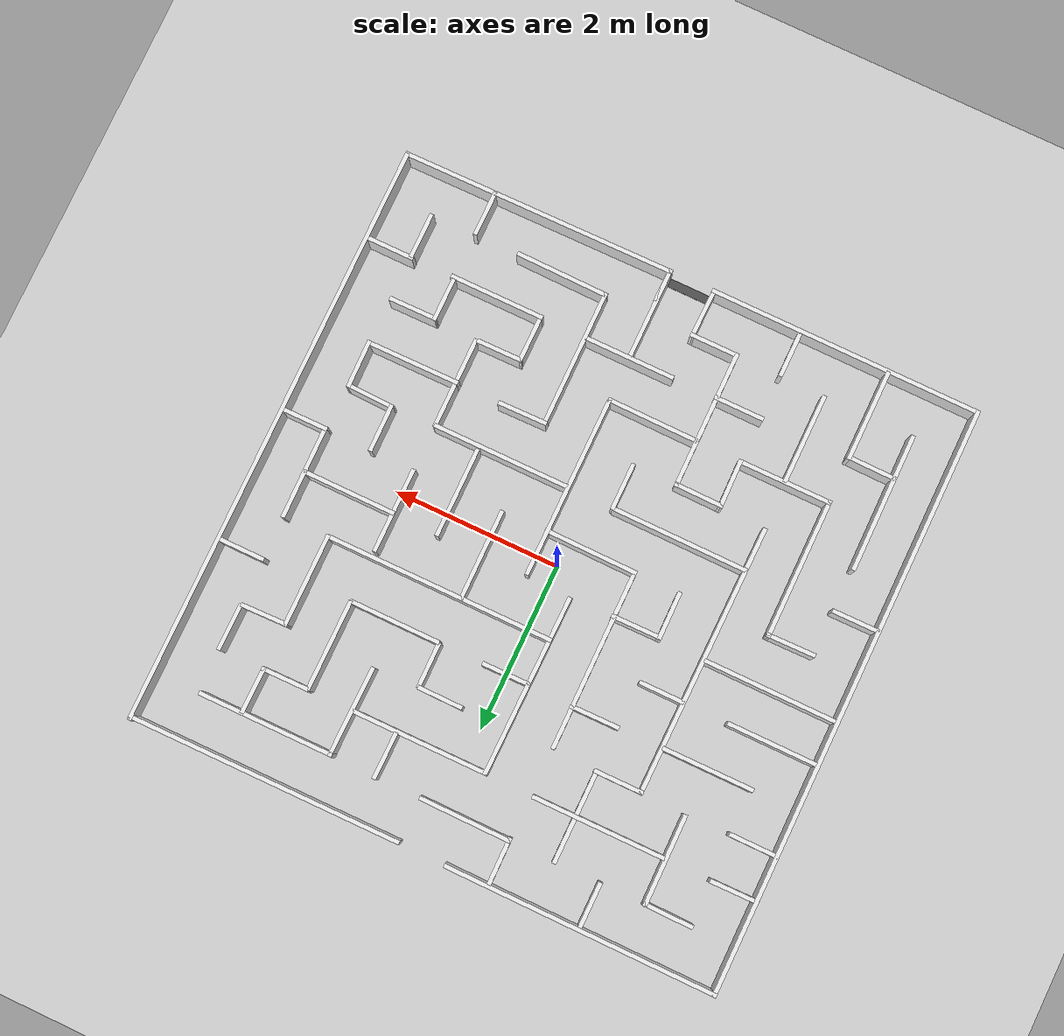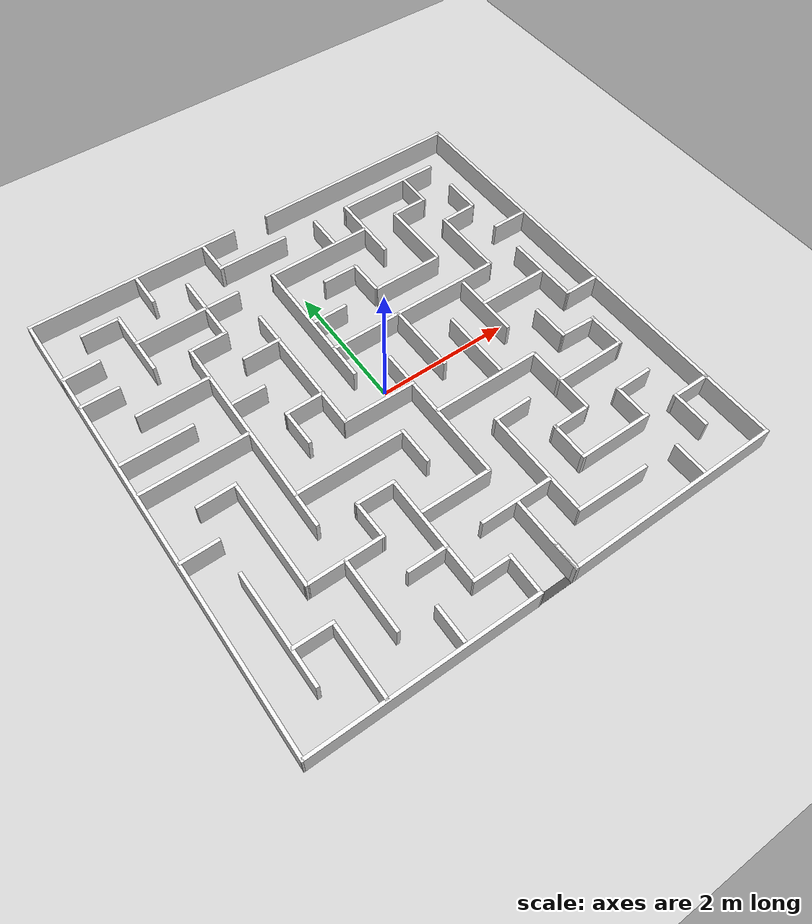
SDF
<sdf version="1.6">
 <world name="default">
  <model name="ground_plane">
   <static>1</static>
   <link name="link">
    <collision name="collision">
     <geometry><plane><normal>0 0 1</normal><size>100 100</size></plane></geometry>
     <surface><friction><ode><mu>100</mu><mu2>50</mu2></ode></friction></surface>
    </collision>
    <visual name="visual">
     <cast_shadows>0</cast_shadows>
     <geometry><plane><normal>0 0 1</normal><size>100 100</size></plane></geometry>
     <material>
      <script><uri>file://media/materials/scripts/gazebo.material</uri><name>Gazebo/Grey</name></script>
     </material>
    </visual>
   </link>
  </model>
  <model name="ibo2maze">
   <link name="Wall_0">
    <collision name="Wall_0_Collision">
     <geometry><box><size>7.05733 0.05 0.37</size></box></geometry>
     <pose>0 0 0.185 0 -0 0</pose>
    </collision>
    <visual name="Wall_0_Visual">
     <pose>0 0 0.185 0 -0 0</pose>
     <geometry><box><size>7.05733 0.05 0.37</size></box></geometry>
     <material>
      <script><uri>file://media/materials/scripts/gazebo.material</uri><name>Gazebo/White</name></script>
      <ambient>1 1 1 1</ambient>
     </material>
    </visual>
    <pose>-3.50243 -0.007222 0 0 0 -1.56961</pose>
   </link>
   <link name="Wall_10">
    <collision name="Wall_10_Collision">
     <geometry><box><size>0.54316 0.05 0.37</size></box></geometry>
     <pose>0 0 0.185 0 -0 0</pose>
    </collision>
    <visual name="Wall_10_Visual">
     <pose>0 0 0.185 0 -0 0</pose>
     <geometry><box><size>0.54316 0.05 0.37</size></box></geometry>
     <material>
      <script><uri>file://media/materials/scripts/gazebo.material</uri><name>Gazebo/White</name></script>
      <ambient>1 1 1 1</ambient>
     </material>
    </visual>
    <pose>2.41673 -3.23138 0 0 0 -1.5708</pose>
   </link>
   <link name="Wall_101">
    <collision name="Wall_101_Collision">
     <geometry><box><size>1.08875 0.05 0.37</size></box></geometry>
     <pose>0 0 0.185 0 -0 0</pose>
    </collision>
    <visual name="Wall_101_Visual">
     <pose>0 0 0.185 0 -0 0</pose>
     <geometry><box><size>1.08875 0.05 0.37</size></box></geometry>
     <material>
      <script><uri>file://media/materials/scripts/gazebo.material</uri><name>Gazebo/White</name></script>
      <ambient>1 1 1 1</ambient>
     </material>
    </visual>
    <pose>1.88723 -1.34738 0 0 0 -1.56598</pose>
   </link>
   <link name="Wall_103">
    <collision name="Wall_103_Collision">
     <geometry><box><size>0.557084 0.05 0.37</size></box></geometry>
     <pose>0 0 0.185 0 -0 0</pose>
    </collision>
    <visual name="Wall_103_Visual">
     <pose>0 0 0.185 0 -0 0</pose>
     <geometry><box><size>0.557084 0.05 0.37</size></box></geometry>
     <material>
      <script><uri>file://media/materials/scripts/gazebo.material</uri><name>Gazebo/White</name></script>
      <ambient>1 1 1 1</ambient>
     </material>
    </visual>
    <pose>1.60123 -1.88438 0 0 -0 0.009862</pose>
   </link>
   <link name="Wall_105">
    <collision name="Wall_105_Collision">
     <geometry><box><size>0.587023 0.05 0.37</size></box></geometry>
     <pose>0 0 0.185 0 -0 0</pose>
    </collision>
    <visual name="Wall_105_Visual">
     <pose>0 0 0.185 0 -0 0</pose>
     <geometry><box><size>0.587023 0.05 0.37</size></box></geometry>
     <material>
      <script><uri>file://media/materials/scripts/gazebo.material</uri><name>Gazebo/White</name></script>
      <ambient>1 1 1 1</ambient>
     </material>
    </visual>
    <pose>1.34773 -2.15538 0 0 -0 1.5708</pose>
   </link>
   <link name="Wall_107">
    <collision name="Wall_107_Collision">
     <geometry><box><size>1.13403 0.05 0.37</size></box></geometry>
     <pose>0 0 0.185 0 -0 0</pose>
    </collision>
    <visual name="Wall_107_Visual">
     <pose>0 0 0.185 0 -0 0</pose>
     <geometry><box><size>1.13403 0.05 0.37</size></box></geometry>
     <material>
      <script><uri>file://media/materials/scripts/gazebo.material</uri><name>Gazebo/White</name></script>
      <ambient>1 1 1 1</ambient>
     </material>
    </visual>
    <pose>1.88973 -2.42388 0 0 -0 3.14159</pose>
   </link>
   <link name="Wall_109">
    <collision name="Wall_109_Collision">
     <geometry><box><size>0.521835 0.05 0.37</size></box></geometry>
     <pose>0 0 0.185 0 -0 0</pose>
    </collision>
    <visual name="Wall_109_Visual">
     <pose>0 0 0.185 0 -0 0</pose>
     <geometry><box><size>0.521835 0.05 0.37</size></box></geometry>
     <material>
      <script><uri>file://media/materials/scripts/gazebo.material</uri><name>Gazebo/White</name></script>
      <ambient>1 1 1 1</ambient>
     </material>
    </visual>
    <pose>2.41173 -2.14288 0 0 0 -1.5708</pose>
   </link>
   <link name="Wall_111">
    <collision name="Wall_111_Collision">
     <geometry><box><size>0.582023 0.05 0.37</size></box></geometry>
     <pose>0 0 0.185 0 -0 0</pose>
    </collision>
    <visual name="Wall_111_Visual">
     <pose>0 0 0.185 0 -0 0</pose>
     <geometry><box><size>0.582023 0.05 0.37</size></box></geometry>
     <material>
      <script><uri>file://media/materials/scripts/gazebo.material</uri><name>Gazebo/White</name></script>
      <ambient>1 1 1 1</ambient>
     </material>
    </visual>
    <pose>2.67773 -1.90438 0 0 0 -3.13219</pose>
   </link>
   <link name="Wall_113">
    <collision name="Wall_113_Collision">
     <geometry><box><size>1.641 0.05 0.37</size></box></geometry>
     <pose>0 0 0.185 0 -0 0</pose>
    </collision>
    <visual name="Wall_113_Visual">
     <pose>0 0 0.185 0 -0 0</pose>
     <geometry><box><size>1.641 0.05 0.37</size></box></geometry>
     <material>
      <script><uri>file://media/materials/scripts/gazebo.material</uri><name>Gazebo/White</name></script>
      <ambient>1 1 1 1</ambient>
     </material>
    </visual>
    <pose>1.07523 -0.817883 0 0 -0 0</pose>
   </link>
   <link name="Wall_115">
    <collision name="Wall_115_Collision">
     <geometry><box><size>1.07453 0.05 0.37</size></box></geometry>
     <pose>0 0 0.185 0 -0 0</pose>
    </collision>
    <visual name="Wall_115_Visual">
     <pose>0 0 0.185 0 -0 0</pose>
     <geometry><box><size>1.07453 0.05 0.37</size></box></geometry>
     <material>
      <script><uri>file://media/materials/scripts/gazebo.material</uri><name>Gazebo/White</name></script>
      <ambient>1 1 1 1</ambient>
     </material>
    </visual>
    <pose>1.34073 -0.245383 0 0 0 -1.56689</pose>
   </link>
   <link name="Wall_117">
    <collision name="Wall_117_Collision">
     <geometry><box><size>1.63678 0.05 0.37</size></box></geometry>
     <pose>0 0 0.185 0 -0 0</pose>
    </collision>
    <visual name="Wall_117_Visual">
     <pose>0 0 0.185 0 -0 0</pose>
     <geometry><box><size>1.63678 0.05 0.37</size></box></geometry>
     <material>
      <script><uri>file://media/materials/scripts/gazebo.material</uri><name>Gazebo/White</name></script>
      <ambient>1 1 1 1</ambient>
     </material>
    </visual>
    <pose>-1.10477 -0.814883 0 0 0 -0.00252</pose>
   </link>
   <link name="Wall_119">
    <collision name="Wall_119_Collision">
     <geometry><box><size>0.567358 0.05 0.37</size></box></geometry>
     <pose>0 0 0.185 0 -0 0</pose>
    </collision>
    <visual name="Wall_119_Visual">
     <pose>0 0 0.185 0 -0 0</pose>
     <geometry><box><size>0.567358 0.05 0.37</size></box></geometry>
     <material>
      <script><uri>file://media/materials/scripts/gazebo.material</uri><name>Gazebo/White</name></script>
      <ambient>1 1 1 1</ambient>
     </material>
    </visual>
    <pose>-0.287391 -1.08343 0 0 -0 1.5708</pose>
   </link>
   <link name="Wall_12">
    <collision name="Wall_12_Collision">
     <geometry><box><size>0.595301 0.05 0.37</size></box></geometry>
     <pose>0 0 0.185 0 -0 0</pose>
    </collision>
    <visual name="Wall_12_Visual">
     <pose>0 0 0.185 0 -0 0</pose>
     <geometry><box><size>0.595301 0.05 0.37</size></box></geometry>
     <material>
      <script><uri>file://media/materials/scripts/gazebo.material</uri><name>Gazebo/White</name></script>
      <ambient>1 1 1 1</ambient>
     </material>
    </visual>
    <pose>3.22266 -2.41896 0 0 0 -0.000276</pose>
   </link>
   <link name="Wall_121">
    <collision name="Wall_121_Collision">
     <geometry><box><size>0.573974 0.05 0.37</size></box></geometry>
     <pose>0 0 0.185 0 -0 0</pose>
    </collision>
    <visual name="Wall_121_Visual">
     <pose>0 0 0.185 0 -0 0</pose>
     <geometry><box><size>0.573974 0.05 0.37</size></box></geometry>
     <material>
      <script><uri>file://media/materials/scripts/gazebo.material</uri><name>Gazebo/White</name></script>
      <ambient>1 1 1 1</ambient>
     </material>
    </visual>
    <pose>-3.24527 2.41116 0 0 -0 0.0113</pose>
   </link>
   <link name="Wall_123">
    <collision name="Wall_123_Collision">
     <geometry><box><size>0.576958 0.05 0.37</size></box></geometry>
     <pose>0 0 0.185 0 -0 0</pose>
    </collision>
    <visual name="Wall_123_Visual">
     <pose>0 0 0.185 0 -0 0</pose>
     <geometry><box><size>0.576958 0.05 0.37</size></box></geometry>
     <material>
      <script><uri>file://media/materials/scripts/gazebo.material</uri><name>Gazebo/White</name></script>
      <ambient>1 1 1 1</ambient>
     </material>
    </visual>
    <pose>-3.22577 1.87312 0 0 -0 3.14159</pose>
   </link>
   <link name="Wall_125">
    <collision name="Wall_125_Collision">
     <geometry><box><size>1.09238 0.05 0.37</size></box></geometry>
     <pose>0 0 0.185 0 -0 0</pose>
    </collision>
    <visual name="Wall_125_Visual">
     <pose>0 0 0.185 0 -0 0</pose>
     <geometry><box><size>1.09238 0.05 0.37</size></box></geometry>
     <material>
      <script><uri>file://media/materials/scripts/gazebo.material</uri><name>Gazebo/White</name></script>
      <ambient>1 1 1 1</ambient>
     </material>
    </visual>
    <pose>-2.43527 1.33762 0 0 -0 0.002879</pose>
   </link>
   <link name="Wall_127">
    <collision name="Wall_127_Collision">
     <geometry><box><size>1.064 0.05 0.37</size></box></geometry>
     <pose>0 0 0.185 0 -0 0</pose>
    </collision>
    <visual name="Wall_127_Visual">
     <pose>0 0 0.185 0 -0 0</pose>
     <geometry><box><size>1.064 0.05 0.37</size></box></geometry>
     <material>
      <script><uri>file://media/materials/scripts/gazebo.material</uri><name>Gazebo/White</name></script>
      <ambient>1 1 1 1</ambient>
     </material>
    </visual>
    <pose>-2.95358 0.792772 0 0 -0 0</pose>
   </link>
   <link name="Wall_129">
    <collision name="Wall_129_Collision">
     <geometry><box><size>1.08471 0.05 0.37</size></box></geometry>
     <pose>0 0 0.185 0 -0 0</pose>
    </collision>
    <visual name="Wall_129_Visual">
     <pose>0 0 0.185 0 -0 0</pose>
     <geometry><box><size>1.08471 0.05 0.37</size></box></geometry>
     <material>
      <script><uri>file://media/materials/scripts/gazebo.material</uri><name>Gazebo/White</name></script>
      <ambient>1 1 1 1</ambient>
     </material>
    </visual>
    <pose>-2.42749 2.42492 0 0 0 -1.56456</pose>
   </link>
   <link name="Wall_131">
    <collision name="Wall_131_Collision">
     <geometry><box><size>1.61554 0.05 0.37</size></box></geometry>
     <pose>0 0 0.185 0 -0 0</pose>
    </collision>
    <visual name="Wall_131_Visual">
     <pose>0 0 0.185 0 -0 0</pose>
     <geometry><box><size>1.61554 0.05 0.37</size></box></geometry>
     <material>
      <script><uri>file://media/materials/scripts/gazebo.material</uri><name>Gazebo/White</name></script>
      <ambient>1 1 1 1</ambient>
     </material>
    </visual>
    <pose>-1.63727 2.41312 0 0 -0 0.002554</pose>
   </link>
   <link name="Wall_133">
    <collision name="Wall_133_Collision">
     <geometry><box><size>1.08315 0.05 0.37</size></box></geometry>
     <pose>0 0 0.185 0 -0 0</pose>
    </collision>
    <visual name="Wall_133_Visual">
     <pose>0 0 0.185 0 -0 0</pose>
     <geometry><box><size>1.08315 0.05 0.37</size></box></geometry>
     <material>
      <script><uri>file://media/materials/scripts/gazebo.material</uri><name>Gazebo/White</name></script>
      <ambient>1 1 1 1</ambient>
     </material>
    </visual>
    <pose>-1.35127 2.42862 0 0 0 -1.5708</pose>
   </link>
   <link name="Wall_135">
    <collision name="Wall_135_Collision">
     <geometry><box><size>0.589877 0.05 0.37</size></box></geometry>
     <pose>0 0 0.185 0 -0 0</pose>
    </collision>
    <visual name="Wall_135_Visual">
     <pose>0 0 0.185 0 -0 0</pose>
     <geometry><box><size>0.589877 0.05 0.37</size></box></geometry>
     <material>
      <script><uri>file://media/materials/scripts/gazebo.material</uri><name>Gazebo/White</name></script>
      <ambient>1 1 1 1</ambient>
     </material>
    </visual>
    <pose>-1.61501 1.87411 0 0 -0 0.002618</pose>
   </link>
   <link name="Wall_137">
    <collision name="Wall_137_Collision">
     <geometry><box><size>0.547 0.05 0.37</size></box></geometry>
     <pose>0 0 0.185 0 -0 0</pose>
    </collision>
    <visual name="Wall_137_Visual">
     <pose>0 0 0.185 0 -0 0</pose>
     <geometry><box><size>0.547 0.05 0.37</size></box></geometry>
     <material>
      <script><uri>file://media/materials/scripts/gazebo.material</uri><name>Gazebo/White</name></script>
      <ambient>1 1 1 1</ambient>
     </material>
    </visual>
    <pose>-1.89527 3.20862 0 0 -0 1.5708</pose>
   </link>
   <link name="Wall_139">
    <collision name="Wall_139_Collision">
     <geometry><box><size>0.555797 0.05 0.37</size></box></geometry>
     <pose>0 0 0.185 0 -0 0</pose>
    </collision>
    <visual name="Wall_139_Visual">
     <pose>0 0 0.185 0 -0 0</pose>
     <geometry><box><size>0.555797 0.05 0.37</size></box></geometry>
     <material>
      <script><uri>file://media/materials/scripts/gazebo.material</uri><name>Gazebo/White</name></script>
      <ambient>1 1 1 1</ambient>
     </material>
    </visual>
    <pose>-0.808266 3.19612 0 0 -0 1.5787</pose>
   </link>
   <link name="Wall_14">
    <collision name="Wall_14_Collision">
     <geometry><box><size>0.57685 0.05 0.37</size></box></geometry>
     <pose>0 0 0.185 0 -0 0</pose>
    </collision>
    <visual name="Wall_14_Visual">
     <pose>0 0 0.185 0 -0 0</pose>
     <geometry><box><size>0.57685 0.05 0.37</size></box></geometry>
     <material>
      <script><uri>file://media/materials/scripts/gazebo.material</uri><name>Gazebo/White</name></script>
      <ambient>1 1 1 1</ambient>
     </material>
    </visual>
    <pose>2.95658 -2.68238 0 0 -0 1.5708</pose>
   </link>
   <link name="Wall_141">
    <collision name="Wall_141_Collision">
     <geometry><box><size>1.10075 0.05 0.37</size></box></geometry>
     <pose>0 0 0.185 0 -0 0</pose>
    </collision>
    <visual name="Wall_141_Visual">
     <pose>0 0 0.185 0 -0 0</pose>
     <geometry><box><size>1.10075 0.05 0.37</size></box></geometry>
     <material>
      <script><uri>file://media/materials/scripts/gazebo.material</uri><name>Gazebo/White</name></script>
      <ambient>1 1 1 1</ambient>
     </material>
    </visual>
    <pose>-0.277639 2.95138 0 0 -0 3.13728</pose>
   </link>
   <link name="Wall_143">
    <collision name="Wall_143_Collision">
     <geometry><box><size>0.595023 0.05 0.37</size></box></geometry>
     <pose>0 0 0.185 0 -0 0</pose>
    </collision>
    <visual name="Wall_143_Visual">
     <pose>0 0 0.185 0 -0 0</pose>
     <geometry><box><size>0.595023 0.05 0.37</size></box></geometry>
     <material>
      <script><uri>file://media/materials/scripts/gazebo.material</uri><name>Gazebo/White</name></script>
      <ambient>1 1 1 1</ambient>
     </material>
    </visual>
    <pose>-2.70322 2.94477 0 0 0 -0.009174</pose>
   </link>
   <link name="Wall_145">
    <collision name="Wall_145_Collision">
     <geometry><box><size>1.62601 0.05 0.37</size></box></geometry>
     <pose>0 0 0.185 0 -0 0</pose>
    </collision>
    <visual name="Wall_145_Visual">
     <pose>0 0 0.185 0 -0 0</pose>
     <geometry><box><size>1.62601 0.05 0.37</size></box></geometry>
     <material>
      <script><uri>file://media/materials/scripts/gazebo.material</uri><name>Gazebo/White</name></script>
      <ambient>1 1 1 1</ambient>
     </material>
    </visual>
    <pose>0.52279 2.4088 0 0 -0 0.003807</pose>
   </link>
   <link name="Wall_147">
    <collision name="Wall_147_Collision">
     <geometry><box><size>1.07898 0.05 0.37</size></box></geometry>
     <pose>0 0 0.185 0 -0 0</pose>
    </collision>
    <visual name="Wall_147_Visual">
     <pose>0 0 0.185 0 -0 0</pose>
     <geometry><box><size>1.07898 0.05 0.37</size></box></geometry>
     <material>
      <script><uri>file://media/materials/scripts/gazebo.material</uri><name>Gazebo/White</name></script>
      <ambient>1 1 1 1</ambient>
     </material>
    </visual>
    <pose>1.34522 2.42762 0 0 0 -1.5834</pose>
   </link>
   <link name="Wall_149">
    <collision name="Wall_149_Collision">
     <geometry><box><size>1.62001 0.05 0.37</size></box></geometry>
     <pose>0 0 0.185 0 -0 0</pose>
    </collision>
    <visual name="Wall_149_Visual">
     <pose>0 0 0.185 0 -0 0</pose>
     <geometry><box><size>1.62001 0.05 0.37</size></box></geometry>
     <material>
      <script><uri>file://media/materials/scripts/gazebo.material</uri><name>Gazebo/White</name></script>
      <ambient>1 1 1 1</ambient>
     </material>
    </visual>
    <pose>2.13238 2.94459 0 0 -0 0.003185</pose>
   </link>
   <link name="Wall_151">
    <collision name="Wall_151_Collision">
     <geometry><box><size>0.560016 0.05 0.37</size></box></geometry>
     <pose>0 0 0.185 0 -0 0</pose>
    </collision>
    <visual name="Wall_151_Visual">
     <pose>0 0 0.185 0 -0 0</pose>
     <geometry><box><size>0.560016 0.05 0.37</size></box></geometry>
     <material>
      <script><uri>file://media/materials/scripts/gazebo.material</uri><name>Gazebo/White</name></script>
      <ambient>1 1 1 1</ambient>
     </material>
    </visual>
    <pose>2.41773 2.67012 0 0 -0 1.56295</pose>
   </link>
   <link name="Wall_153">
    <collision name="Wall_153_Collision">
     <geometry><box><size>0.573013 0.05 0.37</size></box></geometry>
     <pose>0 0 0.185 0 -0 0</pose>
    </collision>
    <visual name="Wall_153_Visual">
     <pose>0 0 0.185 0 -0 0</pose>
     <geometry><box><size>0.573013 0.05 0.37</size></box></geometry>
     <material>
      <script><uri>file://media/materials/scripts/gazebo.material</uri><name>Gazebo/White</name></script>
      <ambient>1 1 1 1</ambient>
     </material>
    </visual>
    <pose>2.15423 2.41312 0 0 -0 0.007648</pose>
   </link>
   <link name="Wall_155">
    <collision name="Wall_155_Collision">
     <geometry><box><size>1.08393 0.05 0.37</size></box></geometry>
     <pose>0 0 0.185 0 -0 0</pose>
    </collision>
    <visual name="Wall_155_Visual">
     <pose>0 0 0.185 0 -0 0</pose>
     <geometry><box><size>1.08393 0.05 0.37</size></box></geometry>
     <material>
      <script><uri>file://media/materials/scripts/gazebo.material</uri><name>Gazebo/White</name></script>
      <ambient>1 1 1 1</ambient>
     </material>
    </visual>
    <pose>1.87888 1.87677 0 0 -0 1.56989</pose>
   </link>
   <link name="Wall_157">
    <collision name="Wall_157_Collision">
     <geometry><box><size>1.084 0.05 0.37</size></box></geometry>
     <pose>0 0 0.185 0 -0 0</pose>
    </collision>
    <visual name="Wall_157_Visual">
     <pose>0 0 0.185 0 -0 0</pose>
     <geometry><box><size>1.084 0.05 0.37</size></box></geometry>
     <material>
      <script><uri>file://media/materials/scripts/gazebo.material</uri><name>Gazebo/White</name></script>
      <ambient>1 1 1 1</ambient>
     </material>
    </visual>
    <pose>1.3441 1.34012 0 0 -0 0</pose>
   </link>
   <link name="Wall_159">
    <collision name="Wall_159_Collision">
     <geometry><box><size>0.542009 0.05 0.37</size></box></geometry>
     <pose>0 0 0.185 0 -0 0</pose>
    </collision>
    <visual name="Wall_159_Visual">
     <pose>0 0 0.185 0 -0 0</pose>
     <geometry><box><size>0.542009 0.05 0.37</size></box></geometry>
     <material>
      <script><uri>file://media/materials/scripts/gazebo.material</uri><name>Gazebo/White</name></script>
      <ambient>1 1 1 1</ambient>
     </material>
    </visual>
    <pose>0.799706 1.61175 0 0 0 -1.5647</pose>
   </link>
   <link name="Wall_16">
    <collision name="Wall_16_Collision">
     <geometry><box><size>1.11506 0.05 0.37</size></box></geometry>
     <pose>0 0 0.185 0 -0 0</pose>
    </collision>
    <visual name="Wall_16_Visual">
     <pose>0 0 0.185 0 -0 0</pose>
     <geometry><box><size>1.11506 0.05 0.37</size></box></geometry>
     <material>
      <script><uri>file://media/materials/scripts/gazebo.material</uri><name>Gazebo/White</name></script>
      <ambient>1 1 1 1</ambient>
     </material>
    </visual>
    <pose>0.260659 -2.97838 0 0 0 -1.57094</pose>
   </link>
   <link name="Wall_161">
    <collision name="Wall_161_Collision">
     <geometry><box><size>0.539009 0.05 0.37</size></box></geometry>
     <pose>0 0 0.185 0 -0 0</pose>
    </collision>
    <visual name="Wall_161_Visual">
     <pose>0 0 0.185 0 -0 0</pose>
     <geometry><box><size>0.539009 0.05 0.37</size></box></geometry>
     <material>
      <script><uri>file://media/materials/scripts/gazebo.material</uri><name>Gazebo/White</name></script>
      <ambient>1 1 1 1</ambient>
     </material>
    </visual>
    <pose>0.537132 1.87577 0 0 0 -0.006135</pose>
   </link>
   <link name="Wall_163">
    <collision name="Wall_163_Collision">
     <geometry><box><size>0.562483 0.05 0.37</size></box></geometry>
     <pose>0 0 0.185 0 -0 0</pose>
    </collision>
    <visual name="Wall_163_Visual">
     <pose>0 0 0.185 0 -0 0</pose>
     <geometry><box><size>0.562483 0.05 0.37</size></box></geometry>
     <material>
      <script><uri>file://media/materials/scripts/gazebo.material</uri><name>Gazebo/White</name></script>
      <ambient>1 1 1 1</ambient>
     </material>
    </visual>
    <pose>-0.001266 1.33762 0 0 -0 0.009765</pose>
   </link>
   <link name="Wall_165">
    <collision name="Wall_165_Collision">
     <geometry><box><size>0.539 0.05 0.37</size></box></geometry>
     <pose>0 0 0.185 0 -0 0</pose>
    </collision>
    <visual name="Wall_165_Visual">
     <pose>0 0 0.185 0 -0 0</pose>
     <geometry><box><size>0.539 0.05 0.37</size></box></geometry>
     <material>
      <script><uri>file://media/materials/scripts/gazebo.material</uri><name>Gazebo/White</name></script>
      <ambient>1 1 1 1</ambient>
     </material>
    </visual>
    <pose>-1.62944 0.795117 0 0 -0 0</pose>
   </link>
   <link name="Wall_167">
    <collision name="Wall_167_Collision">
     <geometry><box><size>0.560258 0.05 0.37</size></box></geometry>
     <pose>0 0 0.185 0 -0 0</pose>
    </collision>
    <visual name="Wall_167_Visual">
     <pose>0 0 0.185 0 -0 0</pose>
     <geometry><box><size>0.560258 0.05 0.37</size></box></geometry>
     <material>
      <script><uri>file://media/materials/scripts/gazebo.material</uri><name>Gazebo/White</name></script>
      <ambient>1 1 1 1</ambient>
     </material>
    </visual>
    <pose>0.804234 2.70212 0 0 0 -1.5806</pose>
   </link>
   <link name="Wall_169">
    <collision name="Wall_169_Collision">
     <geometry><box><size>0.556215 0.05 0.37</size></box></geometry>
     <pose>0 0 0.185 0 -0 0</pose>
    </collision>
    <visual name="Wall_169_Visual">
     <pose>0 0 0.185 0 -0 0</pose>
     <geometry><box><size>0.556215 0.05 0.37</size></box></geometry>
     <material>
      <script><uri>file://media/materials/scripts/gazebo.material</uri><name>Gazebo/White</name></script>
      <ambient>1 1 1 1</ambient>
     </material>
    </visual>
    <pose>3.22073 1.33612 0 0 -0 0</pose>
   </link>
   <link name="Wall_17">
    <collision name="Wall_17_Collision">
     <geometry><box><size>0.400275 0.05 0.37</size></box></geometry>
     <pose>0 0 0.185 0 -0 0</pose>
    </collision>
    <visual name="Wall_17_Visual">
     <pose>0 0 0.185 0 -0 0</pose>
     <geometry><box><size>0.400275 0.05 0.37</size></box></geometry>
     <material>
      <script><uri>file://media/materials/scripts/gazebo.material</uri><name>Gazebo/White</name></script>
      <ambient>1 1 1 1</ambient>
     </material>
    </visual>
    <pose>0.267159 -3.33588 0 0 -0 1.5708</pose>
   </link>
   <link name="Wall_171">
    <collision name="Wall_171_Collision">
     <geometry><box><size>0.563985 0.05 0.37</size></box></geometry>
     <pose>0 0 0.185 0 -0 0</pose>
    </collision>
    <visual name="Wall_171_Visual">
     <pose>0 0 0.185 0 -0 0</pose>
     <geometry><box><size>0.563985 0.05 0.37</size></box></geometry>
     <material>
      <script><uri>file://media/materials/scripts/gazebo.material</uri><name>Gazebo/White</name></script>
      <ambient>1 1 1 1</ambient>
     </material>
    </visual>
    <pose>2.95273 2.15912 0 0 0 -1.57858</pose>
   </link>
   <link name="Wall_173">
    <collision name="Wall_173_Collision">
     <geometry><box><size>0.563271 0.05 0.37</size></box></geometry>
     <pose>0 0 0.185 0 -0 0</pose>
    </collision>
    <visual name="Wall_173_Visual">
     <pose>0 0 0.185 0 -0 0</pose>
     <geometry><box><size>0.563271 0.05 0.37</size></box></geometry>
     <material>
      <script><uri>file://media/materials/scripts/gazebo.material</uri><name>Gazebo/White</name></script>
      <ambient>1 1 1 1</ambient>
     </material>
    </visual>
    <pose>2.67215 1.8782 0 0 -0 0.02693</pose>
   </link>
   <link name="Wall_175">
    <collision name="Wall_175_Collision">
     <geometry><box><size>1.11244 0.05 0.37</size></box></geometry>
     <pose>0 0 0.185 0 -0 0</pose>
    </collision>
    <visual name="Wall_175_Visual">
     <pose>0 0 0.185 0 -0 0</pose>
     <geometry><box><size>1.11244 0.05 0.37</size></box></geometry>
     <material>
      <script><uri>file://media/materials/scripts/gazebo.material</uri><name>Gazebo/White</name></script>
      <ambient>1 1 1 1</ambient>
     </material>
    </visual>
    <pose>2.41721 1.34008 0 0 0 -1.56772</pose>
   </link>
   <link name="Wall_19">
    <collision name="Wall_19_Collision">
     <geometry><box><size>1.08267 0.05 0.37</size></box></geometry>
     <pose>0 0 0.185 0 -0 0</pose>
    </collision>
    <visual name="Wall_19_Visual">
     <pose>0 0 0.185 0 -0 0</pose>
     <geometry><box><size>1.08267 0.05 0.37</size></box></geometry>
     <material>
      <script><uri>file://media/materials/scripts/gazebo.material</uri><name>Gazebo/White</name></script>
      <ambient>1 1 1 1</ambient>
     </material>
    </visual>
    <pose>0.257234 -2.42588 0 0 -0 0</pose>
   </link>
   <link name="Wall_2">
    <collision name="Wall_2_Collision">
     <geometry><box><size>3.248 0.05 0.37</size></box></geometry>
     <pose>0 0 0.185 0 -0 0</pose>
    </collision>
    <visual name="Wall_2_Visual">
     <pose>0 0 0.185 0 -0 0</pose>
     <geometry><box><size>3.248 0.05 0.37</size></box></geometry>
     <material>
      <script><uri>file://media/materials/scripts/gazebo.material</uri><name>Gazebo/White</name></script>
      <ambient>1 1 1 1</ambient>
     </material>
    </visual>
    <pose>-1.90759 3.49394 0 0 -0 3.14003</pose>
   </link>
   <link name="Wall_21">
    <collision name="Wall_21_Collision">
     <geometry><box><size>1.64813 0.05 0.37</size></box></geometry>
     <pose>0 0 0.185 0 -0 0</pose>
    </collision>
    <visual name="Wall_21_Visual">
     <pose>0 0 0.185 0 -0 0</pose>
     <geometry><box><size>1.64813 0.05 0.37</size></box></geometry>
     <material>
      <script><uri>file://media/materials/scripts/gazebo.material</uri><name>Gazebo/White</name></script>
      <ambient>1 1 1 1</ambient>
     </material>
    </visual>
    <pose>0.803365 -2.15919 0 0 0 -1.56715</pose>
   </link>
   <link name="Wall_23">
    <collision name="Wall_23_Collision">
     <geometry><box><size>1.11554 0.05 0.37</size></box></geometry>
     <pose>0 0 0.185 0 -0 0</pose>
    </collision>
    <visual name="Wall_23_Visual">
     <pose>0 0 0.185 0 -0 0</pose>
     <geometry><box><size>1.11554 0.05 0.37</size></box></geometry>
     <material>
      <script><uri>file://media/materials/scripts/gazebo.material</uri><name>Gazebo/White</name></script>
      <ambient>1 1 1 1</ambient>
     </material>
    </visual>
    <pose>1.33901 -2.96524 0 0 -0 3.12913</pose>
   </link>
   <link name="Wall_25">
    <collision name="Wall_25_Collision">
     <geometry><box><size>0.589072 0.05 0.37</size></box></geometry>
     <pose>0 0 0.185 0 -0 0</pose>
    </collision>
    <visual name="Wall_25_Visual">
     <pose>0 0 0.185 0 -0 0</pose>
     <geometry><box><size>0.589072 0.05 0.37</size></box></geometry>
     <material>
      <script><uri>file://media/materials/scripts/gazebo.material</uri><name>Gazebo/White</name></script>
      <ambient>1 1 1 1</ambient>
     </material>
    </visual>
    <pose>1.06959 -1.35533 0 0 0 -3.12506</pose>
   </link>
   <link name="Wall_27">
    <collision name="Wall_27_Collision">
     <geometry><box><size>3.2721 0.05 0.37</size></box></geometry>
     <pose>0 0 0.185 0 -0 0</pose>
    </collision>
    <visual name="Wall_27_Visual">
     <pose>0 0 0.185 0 -0 0</pose>
     <geometry><box><size>3.2721 0.05 0.37</size></box></geometry>
     <material>
      <script><uri>file://media/materials/scripts/gazebo.material</uri><name>Gazebo/White</name></script>
      <ambient>1 1 1 1</ambient>
     </material>
    </visual>
    <pose>-1.88722 -3.51296 0 0 -0 3.14031</pose>
   </link>
   <link name="Wall_29">
    <collision name="Wall_29_Collision">
     <geometry><box><size>0.607073 0.05 0.37</size></box></geometry>
     <pose>0 0 0.185 0 -0 0</pose>
    </collision>
    <visual name="Wall_29_Visual">
     <pose>0 0 0.185 0 -0 0</pose>
     <geometry><box><size>0.607073 0.05 0.37</size></box></geometry>
     <material>
      <script><uri>file://media/materials/scripts/gazebo.material</uri><name>Gazebo/White</name></script>
      <ambient>1 1 1 1</ambient>
     </material>
    </visual>
    <pose>-0.273795 -3.23646 0 0 0 -1.58705</pose>
   </link>
   <link name="Wall_31">
    <collision name="Wall_31_Collision">
     <geometry><box><size>0.589035 0.05 0.37</size></box></geometry>
     <pose>0 0 0.185 0 -0 0</pose>
    </collision>
    <visual name="Wall_31_Visual">
     <pose>0 0 0.185 0 -0 0</pose>
     <geometry><box><size>0.589035 0.05 0.37</size></box></geometry>
     <material>
      <script><uri>file://media/materials/scripts/gazebo.material</uri><name>Gazebo/White</name></script>
      <ambient>1 1 1 1</ambient>
     </material>
    </visual>
    <pose>-0.538766 -2.95788 0 0 -0 0</pose>
   </link>
   <link name="Wall_33">
    <collision name="Wall_33_Collision">
     <geometry><box><size>1.65258 0.05 0.37</size></box></geometry>
     <pose>0 0 0.185 0 -0 0</pose>
    </collision>
    <visual name="Wall_33_Visual">
     <pose>0 0 0.185 0 -0 0</pose>
     <geometry><box><size>1.65258 0.05 0.37</size></box></geometry>
     <material>
      <script><uri>file://media/materials/scripts/gazebo.material</uri><name>Gazebo/White</name></script>
      <ambient>1 1 1 1</ambient>
     </material>
    </visual>
    <pose>-0.811266 -2.15638 0 0 0 -1.56705</pose>
   </link>
   <link name="Wall_35">
    <collision name="Wall_35_Collision">
     <geometry><box><size>0.537019 0.05 0.37</size></box></geometry>
     <pose>0 0 0.185 0 -0 0</pose>
    </collision>
    <visual name="Wall_35_Visual">
     <pose>0 0 0.185 0 -0 0</pose>
     <geometry><box><size>0.537019 0.05 0.37</size></box></geometry>
     <material>
      <script><uri>file://media/materials/scripts/gazebo.material</uri><name>Gazebo/White</name></script>
      <ambient>1 1 1 1</ambient>
     </material>
    </visual>
    <pose>-1.34727 -3.21538 0 0 0 -1.5708</pose>
   </link>
   <link name="Wall_37">
    <collision name="Wall_37_Collision">
     <geometry><box><size>1.08932 0.05 0.37</size></box></geometry>
     <pose>0 0 0.185 0 -0 0</pose>
    </collision>
    <visual name="Wall_37_Visual">
     <pose>0 0 0.185 0 -0 0</pose>
     <geometry><box><size>1.08932 0.05 0.37</size></box></geometry>
     <material>
      <script><uri>file://media/materials/scripts/gazebo.material</uri><name>Gazebo/White</name></script>
      <ambient>1 1 1 1</ambient>
     </material>
    </visual>
    <pose>-2.41827 -2.96538 0 0 0 -1.5708</pose>
   </link>
   <link name="Wall_39">
    <collision name="Wall_39_Collision">
     <geometry><box><size>0.583034 0.05 0.37</size></box></geometry>
     <pose>0 0 0.185 0 -0 0</pose>
    </collision>
    <visual name="Wall_39_Visual">
     <pose>0 0 0.185 0 -0 0</pose>
     <geometry><box><size>0.583034 0.05 0.37</size></box></geometry>
     <material>
      <script><uri>file://media/materials/scripts/gazebo.material</uri><name>Gazebo/White</name></script>
      <ambient>1 1 1 1</ambient>
     </material>
    </visual>
    <pose>-2.68477 -2.44288 0 0 0 -0.011257</pose>
   </link>
   <link name="Wall_4">
    <collision name="Wall_4_Collision">
     <geometry><box><size>3.27061 0.05 0.37</size></box></geometry>
     <pose>0 0 0.185 0 -0 0</pose>
    </collision>
    <visual name="Wall_4_Visual">
     <pose>0 0 0.185 0 -0 0</pose>
     <geometry><box><size>3.27061 0.05 0.37</size></box></geometry>
     <material>
      <script><uri>file://media/materials/scripts/gazebo.material</uri><name>Gazebo/White</name></script>
      <ambient>1 1 1 1</ambient>
     </material>
    </visual>
    <pose>1.89021 3.48914 0 0 0 -3.13619</pose>
   </link>
   <link name="Wall_41">
    <collision name="Wall_41_Collision">
     <geometry><box><size>1.65369 0.05 0.37</size></box></geometry>
     <pose>0 0 0.185 0 -0 0</pose>
    </collision>
    <visual name="Wall_41_Visual">
     <pose>0 0 0.185 0 -0 0</pose>
     <geometry><box><size>1.65369 0.05 0.37</size></box></geometry>
     <material>
      <script><uri>file://media/materials/scripts/gazebo.material</uri><name>Gazebo/White</name></script>
      <ambient>1 1 1 1</ambient>
     </material>
    </visual>
    <pose>-2.96548 -2.14372 0 0 0 -1.56358</pose>
   </link>
   <link name="Wall_43">
    <collision name="Wall_43_Collision">
     <geometry><box><size>1.076 0.05 0.37</size></box></geometry>
     <pose>0 0 0.185 0 -0 0</pose>
    </collision>
    <visual name="Wall_43_Visual">
     <pose>0 0 0.185 0 -0 0</pose>
     <geometry><box><size>1.076 0.05 0.37</size></box></geometry>
     <material>
      <script><uri>file://media/materials/scripts/gazebo.material</uri><name>Gazebo/White</name></script>
      <ambient>1 1 1 1</ambient>
     </material>
    </visual>
    <pose>-1.88512 -2.42403 0 0 0 -1.5708</pose>
   </link>
   <link name="Wall_45">
    <collision name="Wall_45_Collision">
     <geometry><box><size>1.12959 0.05 0.37</size></box></geometry>
     <pose>0 0 0.185 0 -0 0</pose>
    </collision>
    <visual name="Wall_45_Visual">
     <pose>0 0 0.185 0 -0 0</pose>
     <geometry><box><size>1.12959 0.05 0.37</size></box></geometry>
     <material>
      <script><uri>file://media/materials/scripts/gazebo.material</uri><name>Gazebo/White</name></script>
      <ambient>1 1 1 1</ambient>
     </material>
    </visual>
    <pose>-1.88447 -1.89026 0 0 -0 0.003006</pose>
   </link>
   <link name="Wall_47">
    <collision name="Wall_47_Collision">
     <geometry><box><size>1.67016 0.05 0.37</size></box></geometry>
     <pose>0 0 0.185 0 -0 0</pose>
    </collision>
    <visual name="Wall_47_Visual">
     <pose>0 0 0.185 0 -0 0</pose>
     <geometry><box><size>1.67016 0.05 0.37</size></box></geometry>
     <material>
      <script><uri>file://media/materials/scripts/gazebo.material</uri><name>Gazebo/White</name></script>
      <ambient>1 1 1 1</ambient>
     </material>
    </visual>
    <pose>-2.42619 -1.0818 0 0 0 -1.56842</pose>
   </link>
   <link name="Wall_49">
    <collision name="Wall_49_Collision">
     <geometry><box><size>0.58294 0.05 0.37</size></box></geometry>
     <pose>0 0 0.185 0 -0 0</pose>
    </collision>
    <visual name="Wall_49_Visual">
     <pose>0 0 0.185 0 -0 0</pose>
     <geometry><box><size>0.58294 0.05 0.37</size></box></geometry>
     <material>
      <script><uri>file://media/materials/scripts/gazebo.material</uri><name>Gazebo/White</name></script>
      <ambient>1 1 1 1</ambient>
     </material>
    </visual>
    <pose>-2.69454 -0.276627 0 0 -0 0.018403</pose>
   </link>
   <link name="Wall_51">
    <collision name="Wall_51_Collision">
     <geometry><box><size>0.558738 0.05 0.37</size></box></geometry>
     <pose>0 0 0.185 0 -0 0</pose>
    </collision>
    <visual name="Wall_51_Visual">
     <pose>0 0 0.185 0 -0 0</pose>
     <geometry><box><size>0.558738 0.05 0.37</size></box></geometry>
     <material>
      <script><uri>file://media/materials/scripts/gazebo.material</uri><name>Gazebo/White</name></script>
      <ambient>1 1 1 1</ambient>
     </material>
    </visual>
    <pose>-3.22601 -0.817592 0 0 0 -3.13332</pose>
   </link>
   <link name="Wall_53">
    <collision name="Wall_53_Collision">
     <geometry><box><size>1.58 0.05 0.37</size></box></geometry>
     <pose>0 0 0.185 0 -0 0</pose>
    </collision>
    <visual name="Wall_53_Visual">
     <pose>0 0 0.185 0 -0 0</pose>
     <geometry><box><size>1.58 0.05 0.37</size></box></geometry>
     <material>
      <script><uri>file://media/materials/scripts/gazebo.material</uri><name>Gazebo/White</name></script>
      <ambient>1 1 1 1</ambient>
     </material>
    </visual>
    <pose>-2.69484 0.278117 0 0 -0 0</pose>
   </link>
   <link name="Wall_55">
    <collision name="Wall_55_Collision">
     <geometry><box><size>3.23035 0.05 0.37</size></box></geometry>
     <pose>0 0 0.185 0 -0 0</pose>
    </collision>
    <visual name="Wall_55_Visual">
     <pose>0 0 0.185 0 -0 0</pose>
     <geometry><box><size>3.23035 0.05 0.37</size></box></geometry>
     <material>
      <script><uri>file://media/materials/scripts/gazebo.material</uri><name>Gazebo/White</name></script>
      <ambient>1 1 1 1</ambient>
     </material>
    </visual>
    <pose>-1.89511 0.283259 0 0 0 -1.57719</pose>
   </link>
   <link name="Wall_59">
    <collision name="Wall_59_Collision">
     <geometry><box><size>0.591023 0.05 0.37</size></box></geometry>
     <pose>0 0 0.185 0 -0 0</pose>
    </collision>
    <visual name="Wall_59_Visual">
     <pose>0 0 0.185 0 -0 0</pose>
     <geometry><box><size>0.591023 0.05 0.37</size></box></geometry>
     <material>
      <script><uri>file://media/materials/scripts/gazebo.material</uri><name>Gazebo/White</name></script>
      <ambient>1 1 1 1</ambient>
     </material>
    </visual>
    <pose>-1.08477 -1.35238 0 0 0 -0.009242</pose>
   </link>
   <link name="Wall_6">
    <collision name="Wall_6_Collision">
     <geometry><box><size>7.02654 0.05 0.37</size></box></geometry>
     <pose>0 0 0.185 0 -0 0</pose>
    </collision>
    <visual name="Wall_6_Visual">
     <pose>0 0 0.185 0 -0 0</pose>
     <geometry><box><size>7.02654 0.05 0.37</size></box></geometry>
     <material>
      <script><uri>file://media/materials/scripts/gazebo.material</uri><name>Gazebo/White</name></script>
      <ambient>1 1 1 1</ambient>
     </material>
    </visual>
    <pose>3.50355 0.027067 0 0 -0 1.57173</pose>
   </link>
   <link name="Wall_61">
    <collision name="Wall_61_Collision">
     <geometry><box><size>0.589024 0.05 0.37</size></box></geometry>
     <pose>0 0 0.185 0 -0 0</pose>
    </collision>
    <visual name="Wall_61_Visual">
     <pose>0 0 0.185 0 -0 0</pose>
     <geometry><box><size>0.589024 0.05 0.37</size></box></geometry>
     <material>
      <script><uri>file://media/materials/scripts/gazebo.material</uri><name>Gazebo/White</name></script>
      <ambient>1 1 1 1</ambient>
     </material>
    </visual>
    <pose>-1.34997 -1.61926 0 0 -0 1.59044</pose>
   </link>
   <link name="Wall_63">
    <collision name="Wall_63_Collision">
     <geometry><box><size>0.599 0.05 0.37</size></box></geometry>
     <pose>0 0 0.185 0 -0 0</pose>
    </collision>
    <visual name="Wall_63_Visual">
     <pose>0 0 0.185 0 -0 0</pose>
     <geometry><box><size>0.599 0.05 0.37</size></box></geometry>
     <material>
      <script><uri>file://media/materials/scripts/gazebo.material</uri><name>Gazebo/White</name></script>
      <ambient>1 1 1 1</ambient>
     </material>
    </visual>
    <pose>-1.08077 -2.42788 0 0 -0 0</pose>
   </link>
   <link name="Wall_65">
    <collision name="Wall_65_Collision">
     <geometry><box><size>1.09309 0.05 0.37</size></box></geometry>
     <pose>0 0 0.185 0 -0 0</pose>
    </collision>
    <visual name="Wall_65_Visual">
     <pose>0 0 0.185 0 -0 0</pose>
     <geometry><box><size>1.09309 0.05 0.37</size></box></geometry>
     <material>
      <script><uri>file://media/materials/scripts/gazebo.material</uri><name>Gazebo/White</name></script>
      <ambient>1 1 1 1</ambient>
     </material>
    </visual>
    <pose>-0.272766 -1.89588 0 0 0 -0.00767</pose>
   </link>
   <link name="Wall_67">
    <collision name="Wall_67_Collision">
     <geometry><box><size>2.159 0.05 0.37</size></box></geometry>
     <pose>0 0 0.185 0 -0 0</pose>
    </collision>
    <visual name="Wall_67_Visual">
     <pose>0 0 0.185 0 -0 0</pose>
     <geometry><box><size>2.159 0.05 0.37</size></box></geometry>
     <material>
      <script><uri>file://media/materials/scripts/gazebo.material</uri><name>Gazebo/White</name></script>
      <ambient>1 1 1 1</ambient>
     </material>
    </visual>
    <pose>0.256611 -0.822068 0 0 0 -1.5708</pose>
   </link>
   <link name="Wall_69">
    <collision name="Wall_69_Collision">
     <geometry><box><size>1.11615 0.05 0.37</size></box></geometry>
     <pose>0 0 0.185 0 -0 0</pose>
    </collision>
    <visual name="Wall_69_Visual">
     <pose>0 0 0.185 0 -0 0</pose>
     <geometry><box><size>1.11615 0.05 0.37</size></box></geometry>
     <material>
      <script><uri>file://media/materials/scripts/gazebo.material</uri><name>Gazebo/White</name></script>
      <ambient>1 1 1 1</ambient>
     </material>
    </visual>
    <pose>-0.273102 -0.277366 0 0 0 -0.008064</pose>
   </link>
   <link name="Wall_71">
    <collision name="Wall_71_Collision">
     <geometry><box><size>2.13701 0.05 0.37</size></box></geometry>
     <pose>0 0 0.185 0 -0 0</pose>
    </collision>
    <visual name="Wall_71_Visual">
     <pose>0 0 0.185 0 -0 0</pose>
     <geometry><box><size>2.13701 0.05 0.37</size></box></geometry>
     <material>
      <script><uri>file://media/materials/scripts/gazebo.material</uri><name>Gazebo/White</name></script>
      <ambient>1 1 1 1</ambient>
     </material>
    </visual>
    <pose>-0.811201 0.791464 0 0 0 -1.56744</pose>
   </link>
   <link name="Wall_73">
    <collision name="Wall_73_Collision">
     <geometry><box><size>0.605032 0.05 0.37</size></box></geometry>
     <pose>0 0 0.185 0 -0 0</pose>
    </collision>
    <visual name="Wall_73_Visual">
     <pose>0 0 0.185 0 -0 0</pose>
     <geometry><box><size>0.605032 0.05 0.37</size></box></geometry>
     <material>
      <script><uri>file://media/materials/scripts/gazebo.material</uri><name>Gazebo/White</name></script>
      <ambient>1 1 1 1</ambient>
     </material>
    </visual>
    <pose>-1.07977 0.262117 0 0 -0 0.01081</pose>
   </link>
   <link name="Wall_75">
    <collision name="Wall_75_Collision">
     <geometry><box><size>0.576034 0.05 0.37</size></box></geometry>
     <pose>0 0 0.185 0 -0 0</pose>
    </collision>
    <visual name="Wall_75_Visual">
     <pose>0 0 0.185 0 -0 0</pose>
     <geometry><box><size>0.576034 0.05 0.37</size></box></geometry>
     <material>
      <script><uri>file://media/materials/scripts/gazebo.material</uri><name>Gazebo/White</name></script>
      <ambient>1 1 1 1</ambient>
     </material>
    </visual>
    <pose>-1.35427 -0.003883 0 0 -0 1.5822</pose>
   </link>
   <link name="Wall_77">
    <collision name="Wall_77_Collision">
     <geometry><box><size>0.593259 0.05 0.37</size></box></geometry>
     <pose>0 0 0.185 0 -0 0</pose>
    </collision>
    <visual name="Wall_77_Visual">
     <pose>0 0 0.185 0 -0 0</pose>
     <geometry><box><size>0.593259 0.05 0.37</size></box></geometry>
     <material>
      <script><uri>file://media/materials/scripts/gazebo.material</uri><name>Gazebo/White</name></script>
      <ambient>1 1 1 1</ambient>
     </material>
    </visual>
    <pose>-1.07977 1.34862 0 0 -0 0.009208</pose>
   </link>
   <link name="Wall_79">
    <collision name="Wall_79_Collision">
     <geometry><box><size>2.15573 0.05 0.37</size></box></geometry>
     <pose>0 0 0.185 0 -0 0</pose>
    </collision>
    <visual name="Wall_79_Visual">
     <pose>0 0 0.185 0 -0 0</pose>
     <geometry><box><size>2.15573 0.05 0.37</size></box></geometry>
     <material>
      <script><uri>file://media/materials/scripts/gazebo.material</uri><name>Gazebo/White</name></script>
      <ambient>1 1 1 1</ambient>
     </material>
    </visual>
    <pose>-0.273738 1.35296 0 0 0 -1.5789</pose>
   </link>
   <link name="Wall_8">
    <collision name="Wall_8_Collision">
     <geometry><box><size>3.29732 0.05 0.37</size></box></geometry>
     <pose>0 0 0.185 0 -0 0</pose>
    </collision>
    <visual name="Wall_8_Visual">
     <pose>0 0 0.185 0 -0 0</pose>
     <geometry><box><size>3.29732 0.05 0.37</size></box></geometry>
     <material>
      <script><uri>file://media/materials/scripts/gazebo.material</uri><name>Gazebo/White</name></script>
      <ambient>1 1 1 1</ambient>
     </material>
    </visual>
    <pose>1.88369 -3.49479 0 0 -0 0.009916</pose>
   </link>
   <link name="Wall_81">
    <collision name="Wall_81_Collision">
     <geometry><box><size>2.72528 0.05 0.37</size></box></geometry>
     <pose>0 0 0.185 0 -0 0</pose>
    </collision>
    <visual name="Wall_81_Visual">
     <pose>0 0 0.185 0 -0 0</pose>
     <geometry><box><size>2.72528 0.05 0.37</size></box></geometry>
     <material>
      <script><uri>file://media/materials/scripts/gazebo.material</uri><name>Gazebo/White</name></script>
      <ambient>1 1 1 1</ambient>
     </material>
    </visual>
    <pose>1.06137 0.798373 0 0 -0 0.002435</pose>
   </link>
   <link name="Wall_83">
    <collision name="Wall_83_Collision">
     <geometry><box><size>1.08808 0.05 0.37</size></box></geometry>
     <pose>0 0 0.185 0 -0 0</pose>
    </collision>
    <visual name="Wall_83_Visual">
     <pose>0 0 0.185 0 -0 0</pose>
     <geometry><box><size>1.08808 0.05 0.37</size></box></geometry>
     <material>
      <script><uri>file://media/materials/scripts/gazebo.material</uri><name>Gazebo/White</name></script>
      <ambient>1 1 1 1</ambient>
     </material>
    </visual>
    <pose>0.798818 0.267076 0 0 -0 1.57641</pose>
   </link>
   <link name="Wall_85">
    <collision name="Wall_85_Collision">
     <geometry><box><size>1.015 0.05 0.37</size></box></geometry>
     <pose>0 0 0.185 0 -0 0</pose>
    </collision>
    <visual name="Wall_85_Visual">
     <pose>0 0 0.185 0 -0 0</pose>
     <geometry><box><size>1.015 0.05 0.37</size></box></geometry>
     <material>
      <script><uri>file://media/materials/scripts/gazebo.material</uri><name>Gazebo/White</name></script>
      <ambient>1 1 1 1</ambient>
     </material>
    </visual>
    <pose>1.88469 0.231531 0 0 -0 1.57443</pose>
   </link>
   <link name="Wall_87">
    <collision name="Wall_87_Collision">
     <geometry><box><size>1.11377 0.05 0.37</size></box></geometry>
     <pose>0 0 0.185 0 -0 0</pose>
    </collision>
    <visual name="Wall_87_Visual">
     <pose>0 0 0.185 0 -0 0</pose>
     <geometry><box><size>1.11377 0.05 0.37</size></box></geometry>
     <material>
      <script><uri>file://media/materials/scripts/gazebo.material</uri><name>Gazebo/White</name></script>
      <ambient>1 1 1 1</ambient>
     </material>
    </visual>
    <pose>2.42573 0.264117 0 0 -0 3.14159</pose>
   </link>
   <link name="Wall_89">
    <collision name="Wall_89_Collision">
     <geometry><box><size>1.11935 0.05 0.37</size></box></geometry>
     <pose>0 0 0.185 0 -0 0</pose>
    </collision>
    <visual name="Wall_89_Visual">
     <pose>0 0 0.185 0 -0 0</pose>
     <geometry><box><size>1.11935 0.05 0.37</size></box></geometry>
     <material>
      <script><uri>file://media/materials/scripts/gazebo.material</uri><name>Gazebo/White</name></script>
      <ambient>1 1 1 1</ambient>
     </material>
    </visual>
    <pose>2.96705 0.267481 0 0 0 -1.56085</pose>
   </link>
   <link name="Wall_91">
    <collision name="Wall_91_Collision">
     <geometry><box><size>0.546366 0.05 0.37</size></box></geometry>
     <pose>0 0 0.185 0 -0 0</pose>
    </collision>
    <visual name="Wall_91_Visual">
     <pose>0 0 0.185 0 -0 0</pose>
     <geometry><box><size>0.546366 0.05 0.37</size></box></geometry>
     <material>
      <script><uri>file://media/materials/scripts/gazebo.material</uri><name>Gazebo/White</name></script>
      <ambient>1 1 1 1</ambient>
     </material>
    </visual>
    <pose>3.22055 -0.266019 0 0 -0 0.004577</pose>
   </link>
   <link name="Wall_93">
    <collision name="Wall_93_Collision">
     <geometry><box><size>0.576214 0.05 0.37</size></box></geometry>
     <pose>0 0 0.185 0 -0 0</pose>
    </collision>
    <visual name="Wall_93_Visual">
     <pose>0 0 0.185 0 -0 0</pose>
     <geometry><box><size>0.576214 0.05 0.37</size></box></geometry>
     <material>
      <script><uri>file://media/materials/scripts/gazebo.material</uri><name>Gazebo/White</name></script>
      <ambient>1 1 1 1</ambient>
     </material>
    </visual>
    <pose>2.41623 -0.537883 0 0 0 -1.56129</pose>
   </link>
   <link name="Wall_95">
    <collision name="Wall_95_Collision">
     <geometry><box><size>0.579213 0.05 0.37</size></box></geometry>
     <pose>0 0 0.185 0 -0 0</pose>
    </collision>
    <visual name="Wall_95_Visual">
     <pose>0 0 0.185 0 -0 0</pose>
     <geometry><box><size>0.579213 0.05 0.37</size></box></geometry>
     <material>
      <script><uri>file://media/materials/scripts/gazebo.material</uri><name>Gazebo/White</name></script>
      <ambient>1 1 1 1</ambient>
     </material>
    </visual>
    <pose>2.68323 -0.808383 0 0 -0 3.11325</pose>
   </link>
   <link name="Wall_97">
    <collision name="Wall_97_Collision">
     <geometry><box><size>0.581094 0.05 0.37</size></box></geometry>
     <pose>0 0 0.185 0 -0 0</pose>
    </collision>
    <visual name="Wall_97_Visual">
     <pose>0 0 0.185 0 -0 0</pose>
     <geometry><box><size>0.581094 0.05 0.37</size></box></geometry>
     <material>
      <script><uri>file://media/materials/scripts/gazebo.material</uri><name>Gazebo/White</name></script>
      <ambient>1 1 1 1</ambient>
     </material>
    </visual>
    <pose>2.95273 -1.08138 0 0 -0 1.58963</pose>
   </link>
   <link name="Wall_99">
    <collision name="Wall_99_Collision">
     <geometry><box><size>1.12303 0.05 0.37</size></box></geometry>
     <pose>0 0 0.185 0 -0 0</pose>
    </collision>
    <visual name="Wall_99_Visual">
     <pose>0 0 0.185 0 -0 0</pose>
     <geometry><box><size>1.12303 0.05 0.37</size></box></geometry>
     <material>
      <script><uri>file://media/materials/scripts/gazebo.material</uri><name>Gazebo/White</name></script>
      <ambient>1 1 1 1</ambient>
     </material>
    </visual>
    <pose>2.42123 -1.35088 0 0 -0 0.007456</pose>
   </link>
   <static>1</static>
  </model>
  <model name="asphalt_red_plane_0">
   <static>1</static>
   <link name="link">
    <collision name="collision"><geometry><box><size>0.5 0.1 0.005</size></box></geometry></collision>
    <visual name="visual">
     <cast_shadows>0</cast_shadows>
     <geometry><box><size>0.5 0.1 0.005</size></box></geometry>
     <material>
      <script>
       <uri>model://asphalt_red_plane/materials/scripts</uri>
       <uri>model://asphalt_red_plane/materials/textures</uri>
       <name>vrc/asphalt_red</name>
      </script>
     </material>
    </visual>
   </link>
   <pose>-0.010858 -3.48398 2e-05 0 -0 0</pose>
  </model>
 </world>
</sdf>
